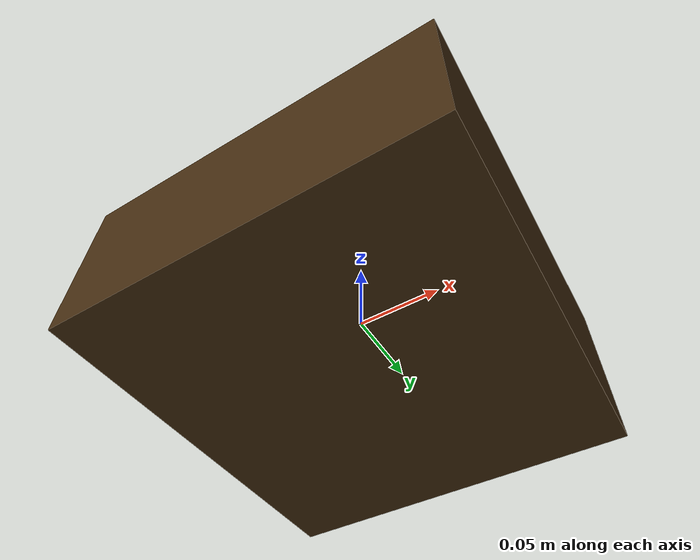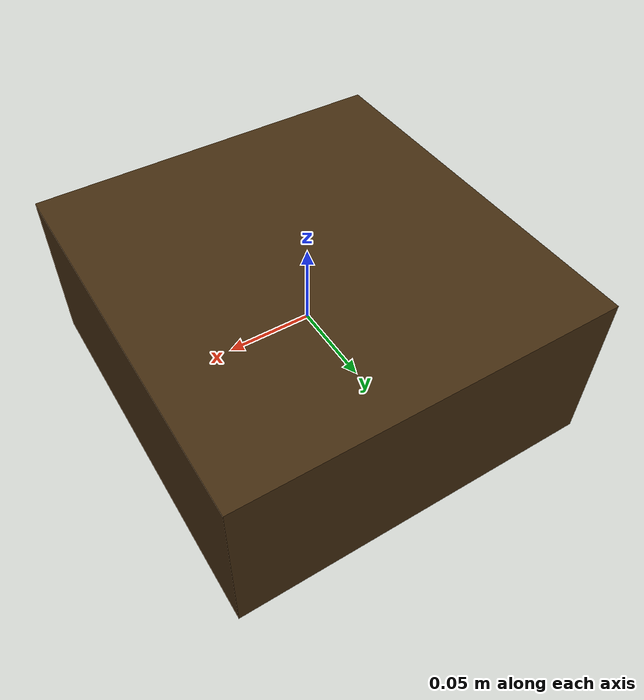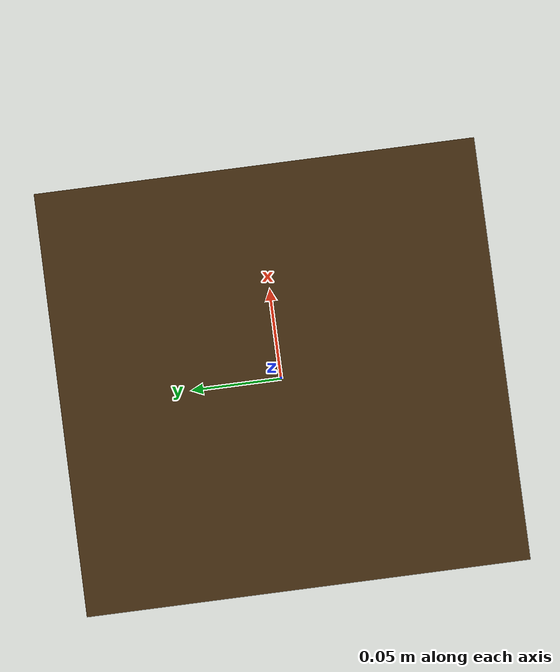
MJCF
<mujoco model="box">
    <asset>
	<texture name="texgeom" type="cube" builtin="flat" mark="cross" width="128" height="128"
		 rgb1="0.6 0.6 0.6" rgb2="0.6 0.6 0.6" markrgb="1 1 1"/>
	<material name='object' texture="texgeom" texuniform="true" rgba=".4 .9 .6 1" />
    </asset>

    <default>
        <default class="shape">
	    <geom type="box" size="0.1105 0.1155 0.05"/>
	    <default class="collision">
		<geom condim="3" group="0" rgba="0.266754 0.174546 0.0644028 1" />
	    </default>
	    <default class="visual">
		<geom condim="3" group="1" material="object" conaffinity="0" contype="0" />
	    </default>
	</default>
    </default>

    <worldbody>
      <light mode="targetbodycom" target="base_link" directional="false" diffuse=".8 .8 .8" specular="0.3 0.3 0.3" pos="0 0 4.0" dir="0 0 -1" />
      <body name="base_link">
        <joint name="root" type="free" />
        <inertial pos="0 0 0" mass="3" diaginertia="0.01584025 0.01471025 0.0255505"/>
        <geom class="collision" />
        <geom class="visual" />
      </body>
    </worldbody>
</mujoco>
